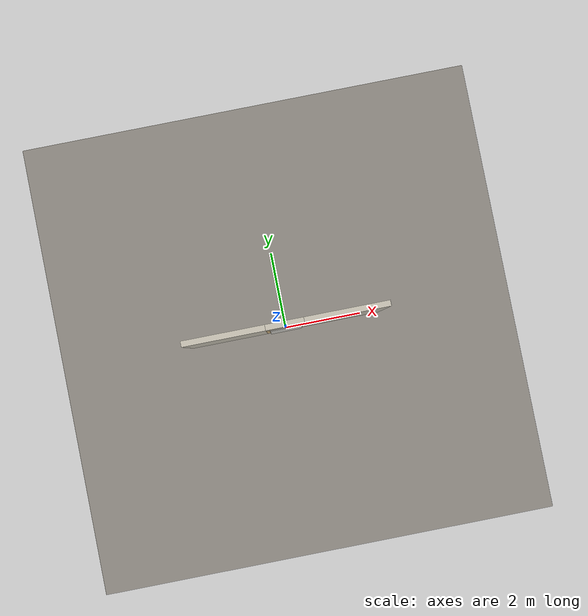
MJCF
<?xml version="1.0" ?>
<mujoco model="db0677_sliding_single_minimal">
  <compiler angle="radian" meshdir="../../hardware" texturedir="../../textures" autolimits="true" inertiafromgeom="false"/>
  <option timestep="0.002" integrator="implicitfast" cone="elliptic" impratio="10" noslip_iterations="3">
    <flag multiccd="enable"/>
  </option>
  <size memory="16M"/>
  <default>
    <geom condim="4" solref="0.005 1" solimp="0.95 0.99 0.001"/>
    <joint solreflimit="0.005 1" solimplimit="0.95 0.99 0.001"/>
    <tendon solreflimit="0.005 1"/>
    <equality solref="0.002 1"/>
  </default>
  <visual>
    <headlight ambient="0.4 0.4 0.4" diffuse="0.7 0.7 0.7" specular="0.2 0.2 0.2"/>
    <quality shadowsize="4096"/>
    <map znear="0.01" zfar="60"/>
  </visual>
  <asset>
    <material name="mat_floor" rgba="0.55 0.53 0.5 1" specular="0.2" shininess="0.15" reflectance="0"/>
    <material name="mat_wall" rgba="0.78 0.76 0.7 1" specular="0.2" shininess="0.1" reflectance="0"/>
    <material name="mat_frame" rgba="0.82 0.7 0.5 1" specular="0.2" shininess="0.45" reflectance="0"/>
    <material name="mat_track" rgba="0.05 0.05 0.05 1" specular="0.38" shininess="0.3" reflectance="0.12"/>
    <material name="mat_leaf" rgba="0.85 0.92 0.95 0.25" specular="0.2" shininess="0.95" reflectance="0.1"/>
    <material name="mat_glass_leaf" rgba="0.85 0.92 0.95 0.25" specular="0.2" shininess="0.95" reflectance="0.1"/>
    <material name="mat_patch" rgba="0.75 0.76 0.77 1" specular="0.8" shininess="0.65" reflectance="0.4"/>
    <material name="mat_roller" rgba="0.65 0.66 0.68 1" specular="0.74" shininess="0.5" reflectance="0.36"/>
    <material name="mat_hook" rgba="0.75 0.76 0.77 1" specular="0.8" shininess="0.65" reflectance="0.4"/>
    <texture name="skybox" type="skybox" builtin="gradient" rgb1="0.6 0.7 0.85" rgb2="0.9 0.92 0.95" width="256" height="256"/>
  </asset>
  <worldbody>
    <light name="sun" pos="1.5 -2.5 4" dir="-0.3 0.5 -0.8" directional="true" diffuse="0.8 0.8 0.8" specular="0.3 0.3 0.3" castshadow="true"/>
    <light name="fill" pos="-1.5 2.5 3" dir="0.3 -0.5 -0.7" directional="true" diffuse="0.35 0.35 0.4" castshadow="false"/>
    <camera name="robot_view" pos="0 -2.644375 1.817425" xyaxes="1 0 0 0 0.26963 0.962964" fovy="52"/>
    <camera name="far_view" pos="0 2.644375 1.817425" xyaxes="-1 0 0 0 -0.26963 0.962964" fovy="52"/>
    <camera name="iso" pos="2.009725 -2.221275 2.240525" xyaxes="0.741536 0.670913 0 -0.242917 0.268487 0.932151" fovy="46"/>
    <camera name="detail_handle" pos="0.48 -0.8 1.23" xyaxes="0.97561 0.219512 0 -0.070934 0.315262 0.94635" fovy="38"/>
    <geom name="floor" type="box" size="6 6 0.05" pos="0 0 -0.05" material="mat_floor" group="0" contype="1" conaffinity="1" friction="0.8 0.005 0.0001" density="2400"/>
    <geom name="wall_left" type="box" size="1.00225 0.0725 1.377" pos="-1.49775 0 1.377" material="mat_wall" group="0" contype="1" conaffinity="1" friction="0.6 0.005 0.0001" density="800"/>
    <geom name="wall_right" type="box" size="1.03225 0.0725 1.377" pos="1.46775 0 1.377" material="mat_wall" group="0" contype="1" conaffinity="1" friction="0.6 0.005 0.0001" density="800"/>
    <geom name="wall_header" type="box" size="0.4655 0.0725 0.2905" pos="-0.03 0 2.4635" material="mat_wall" group="0" contype="1" conaffinity="1" friction="0.6 0.005 0.0001" density="800"/>
    <geom name="jamb_r" type="box" size="0.0095 0.0725 1.077" pos="0.426 0 1.077" material="mat_frame" group="0" contype="1" conaffinity="1" friction="0.6 0.005 0.0001" density="300"/>
    <geom name="jamb_head" type="box" size="0.4355 0.0725 0.0095" pos="0 0 2.1635" material="mat_frame" group="0" contype="1" conaffinity="1" friction="0.6 0.005 0.0001" density="300"/>
    <geom name="jamb_latch_0" type="box" size="0.0395 0.0725 1.077" pos="-0.456 0 1.077" material="mat_frame" group="0" contype="1" conaffinity="1" friction="0.6 0.005 0.0001" density="300"/>
    <site name="approach_point" pos="0 -1.5 0" quat="1 0 0 0" size="0.05" rgba="0.2 0.9 0.2 0.5" group="4"/>
    <site name="goal_point" pos="0 1.5 0" quat="1 0 0 0" size="0.05" rgba="0.2 0.9 0.2 0.5" group="4"/>
    <site name="door_plane_center" pos="0 0 1.077" quat="1 0 0 0" size="0.02" rgba="0.2 0.9 0.2 0.5" group="4"/>
    <body name="leaf" pos="0 -0.0975 0">
      <inertial pos="0 0 1.079" mass="27.691601" quat="-0.5 0.5 0.5 0.5" diaginertia="1.525504915 10.509091807 12.034135195"/>
      <joint name="leaf_slide" type="slide" axis="1 0 0" limited="true" range="0 0.813" damping="3.38458" frictionloss="7.060608" armature="0.5"/>
      <geom name="leaf_glass" type="box" size="0.4065 0.005 1.067" pos="0 0 1.079" material="mat_glass_leaf" group="0" contype="1" conaffinity="1" friction="0.4 0.005 0.0001" density="1"/>
      <site name="leaf_edge_mid" pos="-0.4065 0 1.079" quat="1 0 0 0" size="0.02" rgba="0.2 0.9 0.2 0.5" group="4"/>
    </body>
  </worldbody>
  <sensor>
    <jointpos name="leaf_slide_pos" joint="leaf_slide"/>
    <jointvel name="leaf_slide_vel" joint="leaf_slide"/>
  </sensor>
</mujoco>
